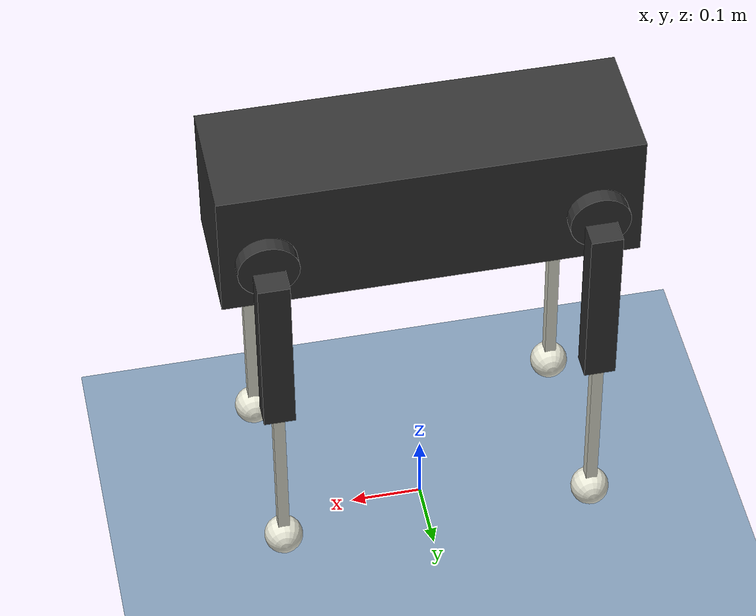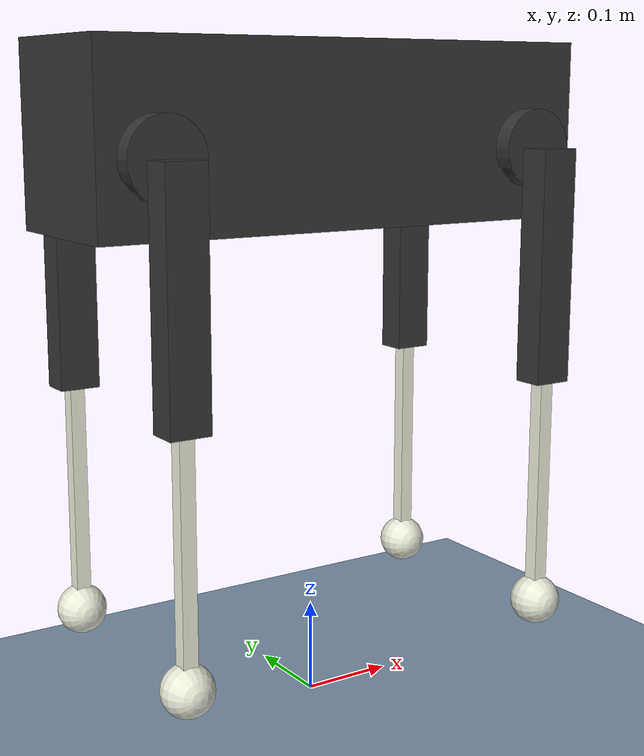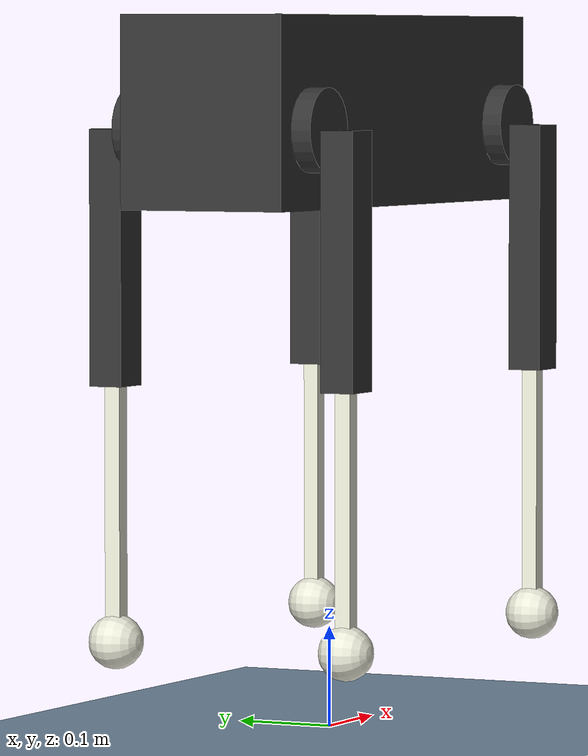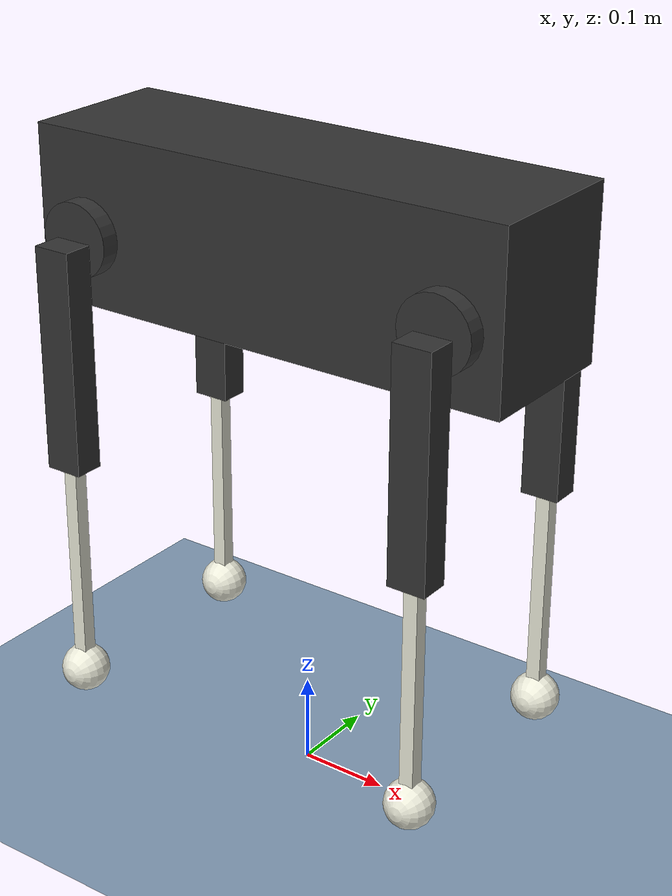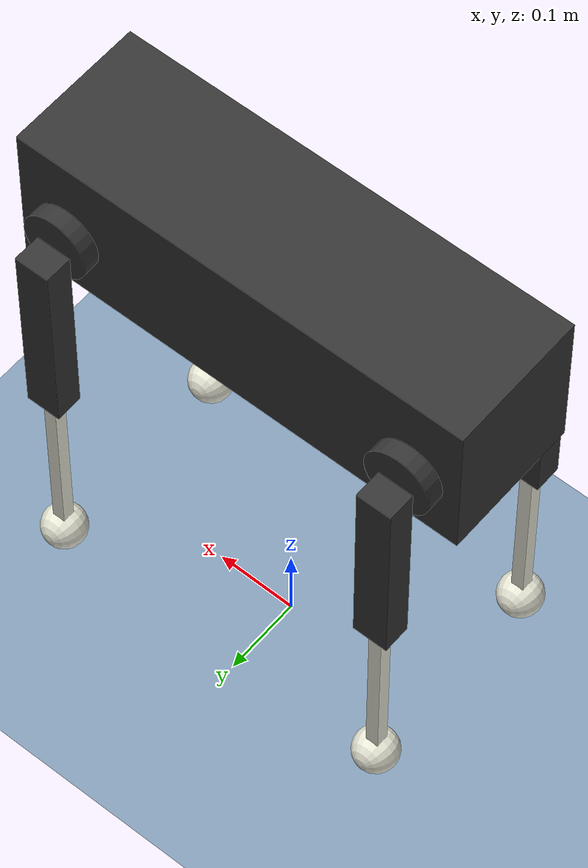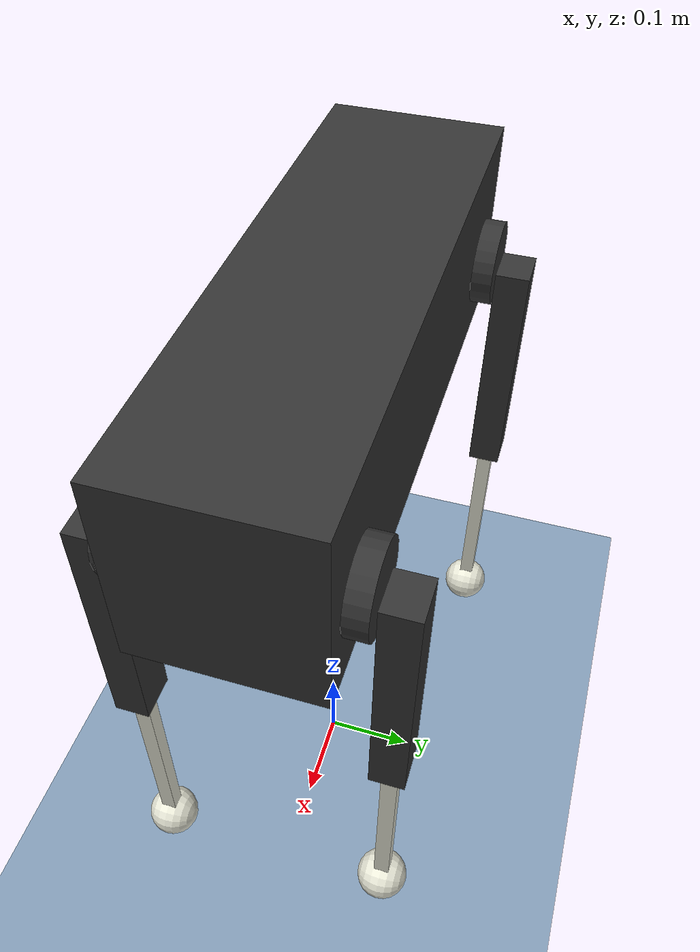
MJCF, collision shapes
<mujoco model="laikago">
    <compiler angle="radian" meshdir="meshes/" balanceinertia="true" />

    <size njmax="500" nconmax="100" />
    <option gravity="0 0 -9.8"/>
	<option timestep="0.002" impratio="5" solver="Newton" cone="elliptic">
		<flag warmstart="enable"></flag>
	</option>

    <default>
        <geom contype="2" conaffinity="1" friction="0.6 0.3 0.3" rgba="0.5 0.6 0.7 1" margin="0.001" group="0"/>
        <light castshadow="true" diffuse="1 1 1" />
        <motor ctrlrange="-40.0 40.0" ctrllimited="true" />
        <camera fovy="60" />
        <joint armature="0.01" frictionloss="0.02" />
    </default>

    <asset>
        <!--Meshes-->
        <mesh name="trunk" file="trunk.stl" />
        <mesh name="hip" file="hip.stl" />
        <mesh name="thigh_mirror" file="thigh_mirror.stl" />
        <mesh name="calf" file="calf.stl" />
        <mesh name="thigh" file="thigh.stl" />

        <!--Textures-->
        <texture type="skybox" builtin="gradient" rgb1="0.527 0.582 0.906" rgb2="0.1 0.1 0.35" width="800" height="800" markrgb="1 1 1" mark="random" random="0.001"/>
        <texture name="plane" type="2d" builtin="flat" rgb1="1 1 1" rgb2="1 1 1" width="512" height="512" mark="cross" markrgb="0 0 0"/>
        <texture name="floor_tex" type="2d" builtin="checker" rgb1=".9 .9 .9" rgb2=".6 .6 .6" width="800" height="800" />

        <!--Materials-->
        <material name="plane" reflectance="0.0" texture="plane" texrepeat="3 3" texuniform="true"/>
        <material name="floor_mat" texture="floor_tex" texrepeat="2 2" shininess="0.8" specular="0.9" reflectance="0.0" />
    </asset>

    <worldbody>
        <!-- light -->
        <light cutoff="100" diffuse="1 1 1" dir="0 0 -1" directional="true" exponent="1" pos="0 0 0.5" specular="0 0 0" castshadow="true"/>

        <!-- Floor Property -->
        <geom name='floor' material="floor_mat" friction="1.0 1.0 0.0001" pos='0 0 0' size='0.0 0.0 0.1'  type='plane' condim="3" contype="1" conaffinity="4"/>

		<!-- camera: fixed view -->
        <camera name="track" mode="trackcom" pos="0 -1.3 1.0" xyaxes="1 0 0 0  0.259 0.966"/>

		<!-- Robot -->
        <body name="torso" pos="0 0 0.6">
            <site name="robot" pos="0 0 0"/>
            <joint type="free" name="world_to_torso_j" damping="0" stiffness="0" armature="0" frictionloss="0" />
            <inertial pos="0.002284 -4.1e-05 0.025165" quat="-0.00605949 0.710803 -0.00734309 0.703327" mass="13.733" diaginertia="0.254491 0.250684 0.0733281" />
            <geom name="torso_vis" type="mesh" mesh="trunk" contype="0" conaffinity="0" group="1" rgba="0.2 0.2 0.2 1" />
            <geom name="torso_col" type="box" size="0.2808 0.086 0.09375" pos="0 0 0.01675" rgba="0.2 0.2 0.2 0" />

            <body name="abduct_fr" pos="0.21935 -0.0875 0">
                <joint type="hinge" name="torso_to_abduct_fr_j" pos="0 0 0" axis="1 0 0" limited="true" range="-1.0472 0.872665" damping="0.01" />
                <inertial pos="-0.001568 0.008134 0.000864" quat="0.629953 0.350191 0.35823 0.593462" mass="1.096" diaginertia="0.000983491 0.000885646 0.000800926" />
                <geom  name="fr_abduct_vis" quat="0 1 0 0" type="mesh" contype="0" conaffinity="0" group="1" rgba="0.2 0.2 0.2 1" mesh="hip" />
                <geom  name="fr_abduct_col" size="0.041 0.04" pos="0 0.021 0" quat="0.707107 0.707107 0 0" type="cylinder" rgba="0.2 0.2 0.2 0" />

                <body name="thigh_fr" pos="0 -0.037 0">
                    <joint type="hinge" name="abduct_fr_to_thigh_fr_j" pos="0 0 0" axis="0 -1 0" limited="true" range="-3.92699 0.523599" damping="0.01" />
                    <inertial pos="-0.000482 -0.02001 -0.031996" quat="0.999848 0.00577968 -0.0153453 -0.00595156" mass="1.528" diaginertia="0.00992391 0.00928096 0.00177389" />
                    <geom type="mesh" contype="0" conaffinity="0" group="1" rgba="0.2 0.2 0.2 1" mesh="thigh_mirror" />
                    <geom size="0.125 0.017 0.0215" pos="0 0 -0.125" quat="0.707107 0 0.707107 0" type="box" rgba="0.2 0.2 0.2 0" />

                    <body name="knee_fr" pos="0 0 -0.25">
                        <joint type="hinge" name="thigh_fr_to_knee_fr_j" pos="0 0 0" axis="0 -1 0" limited="true" range="0.610865 2.77507" damping="0.01" />
                        <inertial pos="-0.002196 -0.000381 -0.12338" quat="0.712765 0.000467477 -0.000119366 0.701402" mass="0.241" diaginertia="0.00619655 0.00618196 3.47683e-05" />
                        <geom type="mesh" contype="0" conaffinity="0" group="1" rgba="0.913725 0.913725 0.847059 1" mesh="calf" />
                        <geom name='fr_knee' size="0.125 0.008 0.008" pos="0 0 -0.125" quat="0.707107 0 0.707107 0" type="box" rgba="0.913725 0.913725 0.847059 0" />

                        <body name="toe_fr" pos="0.0 0.0 -0.25">
                            <inertial pos="0 0 0" mass="0.001" />
                            <geom name='fr_toe' size="0.027 0.014" pos="0 0 0" quat="0.707107 0.707107 0 0" rgba="0.913725 0.913725 0.847059 0" />
                            <site name="fr_toe" pos="0 0 0"/>
                        </body>
                    </body>
                </body>
            </body>

            <body name="abduct_fl" pos="0.21935 0.0875 0">
                <joint type="hinge" name="torso_to_abduct_fl_j" pos="0 0 0" axis="1 0 0" limited="true" range="-0.872665 1.0472" damping="0.01" />
                <inertial pos="-0.001568 -0.008134 0.000864" quat="0.593462 0.35823 0.350191 0.629953" mass="1.096" diaginertia="0.000983491 0.000885646 0.000800926" />
                <geom type="mesh" contype="0" conaffinity="0" group="1" rgba="0.2 0.2 0.2 1" mesh="hip" />
                <geom size="0.041 0.04" pos="0 -0.021 0" quat="0.707107 0.707107 0 0" type="cylinder" rgba="0.2 0.2 0.2 0" />

                <body name="thigh_fl" pos="0 0.037 0">
                    <joint type="hinge" name="abduct_fl_to_thigh_fl_j" pos="0 0 0" axis="0 -1 0" limited="true" range="-3.92699 0.523599" damping="0.01" />
                    <inertial pos="-0.000482 0.02001 -0.031996" quat="0.999848 -0.00577968 -0.0153453 0.00595156" mass="1.528" diaginertia="0.00992391 0.00928096 0.00177389" />
                    <geom type="mesh" contype="0" conaffinity="0" group="1" rgba="0.2 0.2 0.2 1" mesh="thigh" />
                    <geom size="0.125 0.017 0.0215" pos="0 0 -0.125" quat="0.707107 0 0.707107 0" type="box" rgba="0.2 0.2 0.2 0" />

                    <body name="knee_fl" pos="0 0 -0.25">
                        <joint type="hinge" name="thigh_fl_to_knee_fl_j" pos="0 0 0" axis="0 -1 0" limited="true" range="0.610865 2.77507" damping="0.01" />
                        <inertial pos="-0.002196 -0.000381 -0.12338" quat="0.712765 0.000467477 -0.000119366 0.701402" mass="0.241" diaginertia="0.00619655 0.00618196 3.47683e-05" />
                        <geom type="mesh" contype="0" conaffinity="0" group="1" rgba="0.913725 0.913725 0.847059 1" mesh="calf" />
                        <geom name='fl_knee' size="0.125 0.008 0.008" pos="0 0 -0.125" quat="0.707107 0 0.707107 0" type="box" rgba="0.913725 0.913725 0.847059 0" />

                        <body name="toe_fl" pos="0.0 0.0 -0.25">
                            <inertial pos="0 0 0" mass="0.001" />
                            <geom name='fl_toe' size="0.027 0.014" pos="0 0 0" quat="0.707107 0.707107 0 0" rgba="0.913725 0.913725 0.847059 0" />
                            <site name="fl_toe" pos="0 0 0"/>
                        </body>
                    </body>
                </body>
            </body>

            <body name="abduct_hr" pos="-0.21935 -0.0875 0">
                <joint type="hinge" name="torso_to_abduct_hr_j" pos="0 0 0" axis="1 0 0" limited="true" range="-1.0472 0.872665" damping="0.01" />
                <inertial pos="0.001568 0.008134 0.000864" quat="0.35823 0.593462 0.629953 0.350191" mass="1.096" diaginertia="0.000983491 0.000885646 0.000800926" />
                <geom quat="0 0 0 -1" type="mesh" contype="0" conaffinity="0" group="1" rgba="0.2 0.2 0.2 1" mesh="hip" />
                <geom size="0.041 0.04" pos="0 0.021 0" quat="0.707107 0.707107 0 0" type="cylinder" rgba="0.2 0.2 0.2 0" />

                <body name="thigh_hr" pos="0 -0.037 0">
                    <joint type="hinge" name="abduct_hr_to_thigh_hr_j" pos="0 0 0" axis="0 -1 0" limited="true" range="-3.92699 0.523599" damping="0.01" />
                    <inertial pos="-0.000482 -0.02001 -0.031996" quat="0.999848 0.00577968 -0.0153453 -0.00595156" mass="1.528" diaginertia="0.00992391 0.00928096 0.00177389" />
                    <geom type="mesh" contype="0" conaffinity="0" group="1" rgba="0.2 0.2 0.2 1" mesh="thigh_mirror" />
                    <geom size="0.125 0.017 0.0215" pos="0 0 -0.125" quat="0.707107 0 0.707107 0" type="box" rgba="0.2 0.2 0.2 0" />

                    <body name="knee_hr" pos="0 0 -0.25">
                        <joint type="hinge" name="thigh_hr_to_knee_hr_j" pos="0 0 0" axis="0 -1 0" limited="true" range="0.610865 2.77507" damping="0.01" />
                        <inertial pos="-0.002196 -0.000381 -0.12338" quat="0.712765 0.000467477 -0.000119366 0.701402" mass="0.241" diaginertia="0.00619655 0.00618196 3.47683e-05" />
                        <geom type="mesh" contype="0" conaffinity="0" group="1" rgba="0.913725 0.913725 0.847059 1" mesh="calf" />
                        <geom name='hr_knee' size="0.125 0.008 0.008" pos="0 0 -0.125" quat="0.707107 0 0.707107 0" type="box" rgba="0.913725 0.913725 0.847059 0" />
                        <body name="toe_hr" pos="0.0 0.0 -0.25">
                            <inertial pos="0 0 0" mass="0.001" />
                            <geom name='hr_toe' size="0.027 0.014" pos="0 0 0" quat="0.707107 0.707107 0 0" rgba="0.913725 0.913725 0.847059 0" />
                            <site name="hr_toe" pos="0 0 0"/>
                        </body>
                    </body>
                </body>
            </body>

            <body name="abduct_hl" pos="-0.21935 0.0875 0">
                <joint type="hinge" name="torso_to_abduct_hl_j" pos="0 0 0" axis="1 0 0" limited="true" range="-0.872665 1.0472" damping="0.01" />
                <inertial pos="0.001568 -0.008134 0.000864" quat="0.350191 0.629953 0.593462 0.35823" mass="1.096" diaginertia="0.000983491 0.000885646 0.000800926" />
                <geom quat="0 0 1 0" type="mesh" contype="0" conaffinity="0" group="1" rgba="0.2 0.2 0.2 1" mesh="hip" />
                <geom size="0.041 0.04" pos="0 -0.021 0" quat="0.707107 0.707107 0 0" type="cylinder" rgba="0.2 0.2 0.2 0" />

                <body name="thigh_hl" pos="0 0.037 0">
                    <joint type="hinge" name="abduct_hl_to_thigh_hl_j" pos="0 0 0" axis="0 -1 0" limited="true" range="-3.92699 0.523599" damping="0.01" />
                    <inertial pos="-0.000482 0.02001 -0.031996" quat="0.999848 -0.00577968 -0.0153453 0.00595156" mass="1.528" diaginertia="0.00992391 0.00928096 0.00177389" />
                    <geom type="mesh" contype="0" conaffinity="0" group="1" rgba="0.2 0.2 0.2 1" mesh="thigh" />
                    <geom size="0.125 0.017 0.0215" pos="0 0 -0.125" quat="0.707107 0 0.707107 0" type="box" rgba="0.2 0.2 0.2 0" />

                    <body name="knee_hl" pos="0 0 -0.25">
                        <joint type="hinge" name="thigh_hl_to_knee_hl_j" pos="0 0 0" axis="0 -1 0" limited="true" range="0.610865 2.77507" damping="0.01" />
                        <inertial pos="-0.002196 -0.000381 -0.12338" quat="0.712765 0.000467477 -0.000119366 0.701402" mass="0.241" diaginertia="0.00619655 0.00618196 3.47683e-05" />
                        <geom type="mesh" contype="0" conaffinity="0" group="1" rgba="0.913725 0.913725 0.847059 1" mesh="calf" />
                        <geom name='hl_knee' size="0.125 0.008 0.008" pos="0 0 -0.125" quat="0.707107 0 0.707107 0" type="box" rgba="0.913725 0.913725 0.847059 0" />

                        <body name="toe_hl" pos="0.0 0.0 -0.25">
                            <inertial pos="0 0 0" mass="0.001" />
                            <geom name='hl_toe' size="0.027 0.014" pos="0 0 0" quat="0.707107 0.707107 0 0" rgba="0.913725 0.913725 0.847059 0" />
                            <site name="hl_toe" pos="0 0 0"/>
                        </body>
                    </body>
                </body>
            </body>
        </body>
    </worldbody>

    <actuator>
        <position forcelimited="true" forcerange="-100 100" name="pos_fr_torso_to_abduct" gear="1" kp="0" joint="torso_to_abduct_fr_j" />
        <position forcelimited="true" forcerange="-100 100" name="pos_fr_abduct_to_thigh" gear="1" kp="0" joint="abduct_fr_to_thigh_fr_j" />
        <position forcelimited="true" forcerange="-100 100" name="pos_fr_thigh_to_knee" gear="1" kp="0" joint="thigh_fr_to_knee_fr_j" />
        <position forcelimited="true" forcerange="-100 100" name="pos_fl_torso_to_abduct" gear="1" kp="0" joint="torso_to_abduct_fl_j" />
        <position forcelimited="true" forcerange="-100 100" name="pos_fl_abduct_to_thigh" gear="1" kp="0" joint="abduct_fl_to_thigh_fl_j" />
        <position forcelimited="true" forcerange="-100 100" name="pos_fl_thigh_to_knee" gear="1" kp="0" joint="thigh_fl_to_knee_fl_j" />
        <position forcelimited="true" forcerange="-100 100" name="pos_hr_torso_to_abduct" gear="1" kp="0" joint="torso_to_abduct_hr_j" />
        <position forcelimited="true" forcerange="-100 100" name="pos_hr_abduct_to_thigh" gear="1" kp="0" joint="abduct_hr_to_thigh_hr_j" />
        <position forcelimited="true" forcerange="-100 100" name="pos_hr_thigh_to_knee" gear="1" kp="0" joint="thigh_hr_to_knee_hr_j" />
        <position forcelimited="true" forcerange="-100 100" name="pos_hl_torso_to_abduct" gear="1" kp="0" joint="torso_to_abduct_hl_j" />
        <position forcelimited="true" forcerange="-100 100" name="pos_hl_abduct_to_thigh" gear="1" kp="0" joint="abduct_hl_to_thigh_hl_j" />
        <position forcelimited="true" forcerange="-100 100" name="pos_hl_thigh_to_knee" gear="1" kp="0" joint="thigh_hl_to_knee_hl_j" />
    </actuator>

    <sensor>
        <accelerometer site="robot" name="accelerometer"/>
        <velocimeter site="robot" name="velocimeter"/>
        <gyro site="robot" name="gyro"/>
    </sensor>

</mujoco>
